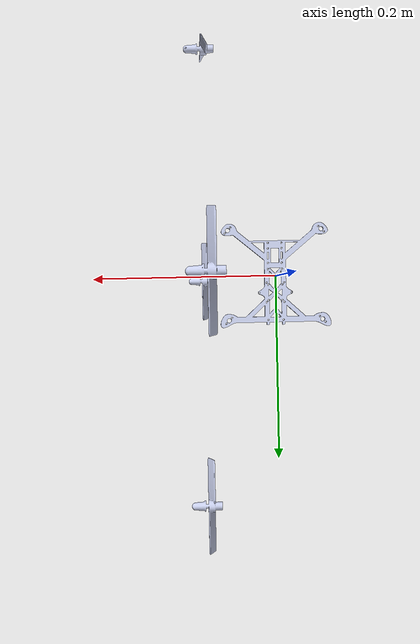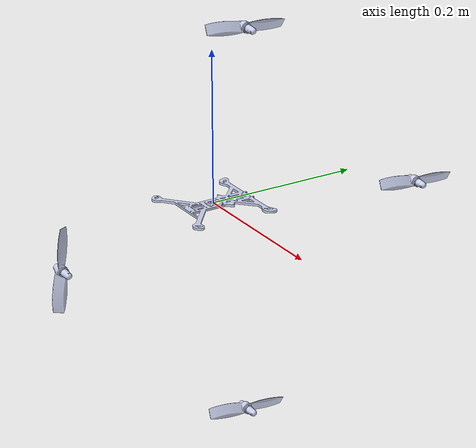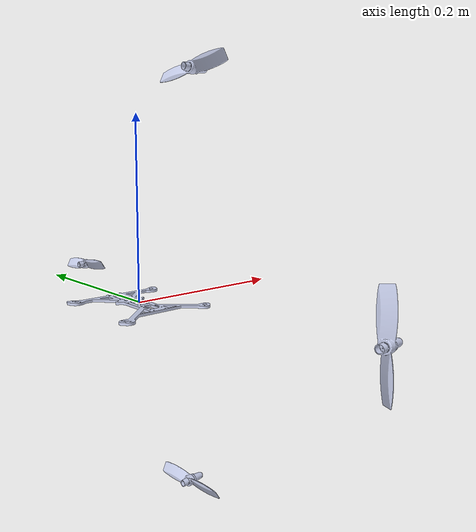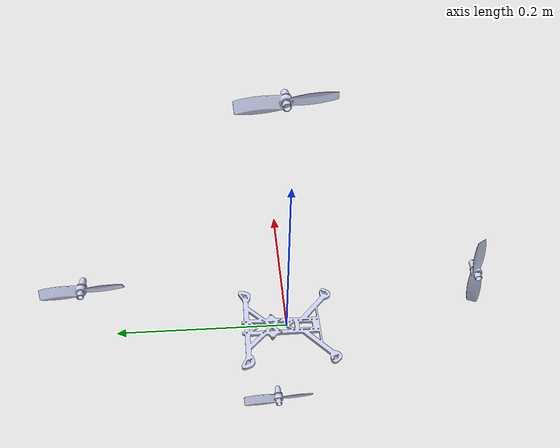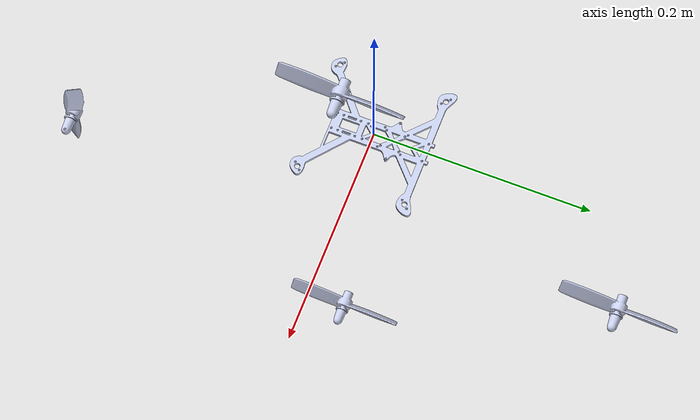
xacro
<?xml version="1.0" encoding="utf-8"?>
<robot name="drone">
  <link name="base_link">
    <inertial>
      <origin xyz="0.0101961017305633 0.000586581220362037 -0.000302594484117957" rpy="0 0 0" />
      <mass value="0.496467844881593" />
      <inertia ixx="0.000909927525918842" ixy="-3.63491786370216E-09" ixz="-2.4593312075908E-08" iyy="0.000718486963084794" iyz="5.25754307050222E-05" izz="0.000714390475951837" />
    </inertial>
    <visual>
      <origin xyz="0 0 0" rpy="0 0 0" />
      <geometry>
        <mesh filename="package://drone/meshes/base_link.STL" />
      </geometry>
      <material name="">
        <color rgba="0.792156862745098 0.819607843137255 0.933333333333333 1" />
      </material>
    </visual>
    <collision>
      <origin xyz="0 0 0" rpy="0 0 0" />
      <geometry>
        <mesh filename="package://drone/meshes/base_link.STL" />
      </geometry>
    </collision>
  </link>
  <link name="Motor1">
    <inertial>
      <origin xyz="-0.00476037653239259 -0.000184719138654033 1.742345464531E-05" rpy="0 0 0" />
      <mass value="0.00559561512965552" />
      <inertia ixx="3.3278709923919E-06" ixy="1.17147755992747E-11" ixz="1.22617027145887E-10" iyy="3.28708267457033E-06" iyz="-2.98472869269373E-07" izz="1.48115147235542E-07" />
    </inertial>
    <visual>
      <origin xyz="0 0 0" rpy="0 0 0" />
      <geometry>
        <mesh filename="package://drone/meshes/Motor1.STL" />
      </geometry>
      <material name="">
        <color rgba="0.792156862745098 0.819607843137255 0.933333333333333 1" />
      </material>
    </visual>
    <collision>
      <origin xyz="0 0 0" rpy="0 0 0" />
      <geometry>
        <mesh filename="package://drone/meshes/Motor1_col.STL" />
      </geometry>
    </collision>
  </link>
  <joint name="Motor1_cont" type="continuous">
    <origin xyz="0.081 -0.251499999999997 0" rpy="0 0 0" />
    <parent link="base_link" />
    <child link="Motor1" />
    <axis xyz="1 0 0" />
  </joint>
  <gazebo reference="motor1_propeller">
    <material>Gazebo/RedTransparent</material>
    <motor>
      <kThrust>0.00025</kThrust>
      <kTorque>-7.4e-06</kTorque>
    </motor>
  </gazebo>
  <link name="Motor2">
    <inertial>
      <origin xyz="-0.00476037653239253 1.74234546454488E-05 0.000184719138653977" rpy="0 0 0" />
      <mass value="0.00559561512965553" />
      <inertia ixx="3.32787099240208E-06" ixy="1.22617027144401E-10" ixz="-1.17147755992446E-11" iyy="1.48115147245327E-07" iyz="2.98472869267805E-07" izz="3.28708267457073E-06" />
    </inertial>
    <visual>
      <origin xyz="0 0 0" rpy="0 0 0" />
      <geometry>
        <mesh filename="package://drone/meshes/Motor2.STL" />
      </geometry>
      <material name="">
        <color rgba="0.792156862745098 0.819607843137255 0.933333333333333 1" />
      </material>
    </visual>
    <collision>
      <origin xyz="0 0 0" rpy="0 0 0" />
      <geometry>
        <mesh filename="package://drone/meshes/Motor2_col.STL" />
      </geometry>
    </collision>
  </link>
  <joint name="Motor2_cont" type="continuous">
    <origin xyz="0.0809999999999999 0 0.251499999999999" rpy="0 0 0" />
    <parent link="base_link" />
    <child link="Motor2" />
    <axis xyz="1 0 0" />
  </joint>
  <gazebo reference="motor2_propeller">
    <material>Gazebo/RedTransparent</material>
    <motor>
      <kThrust>0.00025</kThrust>
      <kTorque>-7.4e-06</kTorque>
    </motor>
  </gazebo>
  <link name="Motor3">
    <inertial>
      <origin xyz="-0.0047604 1.7423E-05 0.00018472" rpy="0 0 0" />
      <mass value="0.0055956" />
      <inertia ixx="3.3279E-06" ixy="1.2262E-10" ixz="-1.1715E-11" iyy="1.4812E-07" iyz="2.9847E-07" izz="3.2871E-06" />
    </inertial>
    <visual>
      <origin xyz="0 0 0" rpy="0 0 0" />
      <geometry>
        <mesh filename="package://drone/meshes/Motor3.STL" />
      </geometry>
      <material name="">
        <color rgba="0.79216 0.81961 0.93333 1" />
      </material>
    </visual>
    <collision>
      <origin xyz="0 0 0" rpy="0 0 0" />
      <geometry>
        <mesh filename="package://drone/meshes/Motor3_col.STL" />
      </geometry>
    </collision>
  </link>
  <joint name="Motor3_cont" type="continuous">
    <origin xyz="0.081 0 -0.2515" rpy="0 0 0" />
    <parent link="base_link" />
    <child link="Motor3" />
    <axis xyz="1 0 0" />
  </joint>
  <gazebo reference="motor3_propeller">
    <material>Gazebo/RedTransparent</material>
    <motor>
      <kThrust>0.00025</kThrust>
      <kTorque>-7.4e-06</kTorque>
    </motor>
  </gazebo>
  <link name="Motor4">
    <inertial>
      <origin xyz="-0.0047604 1.7423E-05 0.00018472" rpy="0 0 0" />
      <mass value="0.0055956" />
      <inertia ixx="3.3279E-06" ixy="1.2262E-10" ixz="-1.1715E-11" iyy="1.4812E-07" iyz="2.9847E-07" izz="3.2871E-06" />
    </inertial>
    <visual>
      <origin xyz="0 0 0" rpy="0 0 0" />
      <geometry>
        <mesh filename="package://drone/meshes/Motor4.STL" />
      </geometry>
      <material name="">
        <color rgba="0.79216 0.81961 0.93333 1" />
      </material>
    </visual>
    <collision>
      <origin xyz="0 0 0" rpy="0 0 0" />
      <geometry>
        <mesh filename="package://drone/meshes/Motor4_col.STL" />
      </geometry>
    </collision>
  </link>
  <joint name="Motor4_cont" type="continuous">
    <origin xyz="0.081 0.2515 0" rpy="0 0 0" />
    <parent link="base_link" />
    <child link="Motor4" />
    <axis xyz="1 0 0" />
  </joint>
  <gazebo reference="motor4_propeller">
    <material>Gazebo/RedTransparent</material>
    <motor>
      <kThrust>0.00025</kThrust>
      <kTorque>-7.4e-06</kTorque>
    </motor>
  </gazebo>
  <gazebo reference="frame">
    <material>Gazebo/Orange</material>
  </gazebo>

  <transmission name="tran1">
    <type>transmission_interface/SimpleTransmission</type>
    <joint name="Motor1_cont">
      <hardwareInterface>hardware_interface/VelocityJointInterface</hardwareInterface>
    </joint>
    <actuator name="Motor1">
      <hardwareInterface>hardware_interface/VelocityJointInterface</hardwareInterface>
      <mechanicalReduction>1</mechanicalReduction>
    </actuator>
  </transmission>

  <transmission name="tran2">
    <type>transmission_interface/SimpleTransmission</type>
    <joint name="Motor2_cont">
      <hardwareInterface>hardware_interface/VelocityJointInterface</hardwareInterface>
    </joint>
    <actuator name="Motor2">
      <hardwareInterface>hardware_interface/VelocityJointInterface</hardwareInterface>
      <mechanicalReduction>1</mechanicalReduction>
    </actuator>
  </transmission>

  <transmission name="tran3">
    <type>transmission_interface/SimpleTransmission</type>
    <joint name="Motor3_cont">
      <hardwareInterface>hardware_interface/VelocityJointInterface</hardwareInterface>
    </joint>
    <actuator name="Motor3">
      <hardwareInterface>hardware_interface/VelocityJointInterface</hardwareInterface>
      <mechanicalReduction>1</mechanicalReduction>
    </actuator>
  </transmission>

  <transmission name="tran4">
    <type>transmission_interface/SimpleTransmission</type>
    <joint name="Motor4_cont">
      <hardwareInterface>hardware_interface/VelocityJointInterface</hardwareInterface>
    </joint>
    <actuator name="Motor4">
      <hardwareInterface>hardware_interface/VelocityJointInterface</hardwareInterface>
      <mechanicalReduction>1</mechanicalReduction>
    </actuator>
  </transmission>

  <gazebo>
    <plugin name="gazebo_ros_control" filename="libgazebo_ros_control.so">
      <robotNamespace>/drone</robotNamespace>
      </plugin>
  </gazebo>
</robot>

<!-- EffortJointInterface JointGroupVelocityController -->
